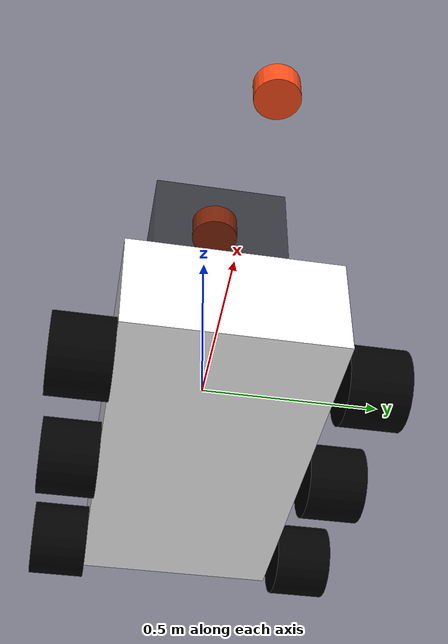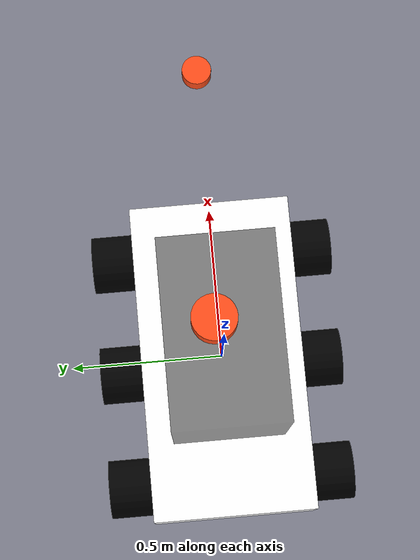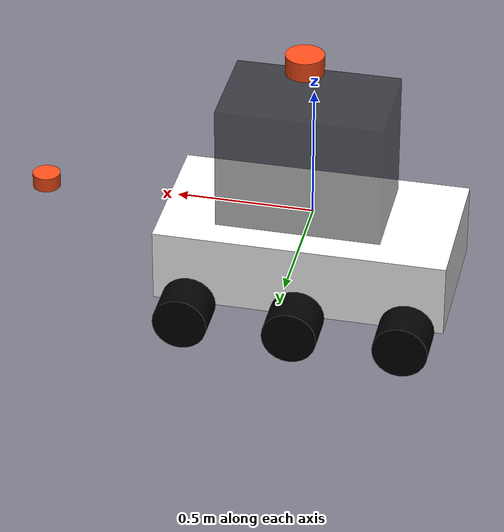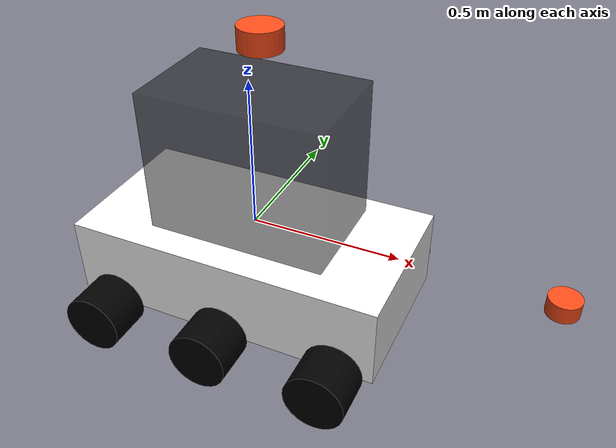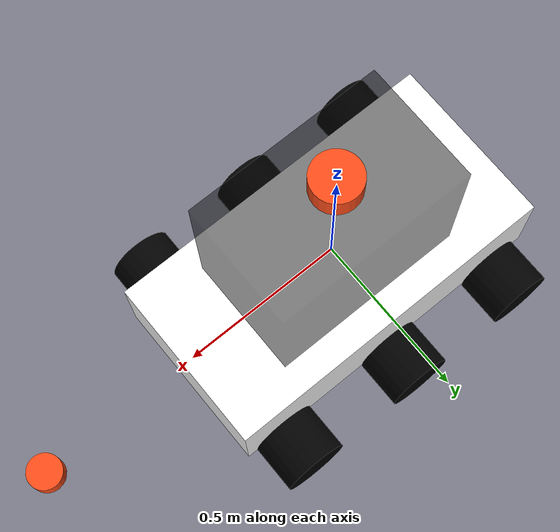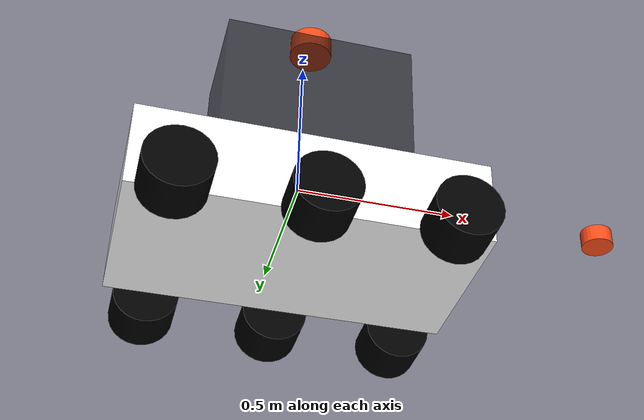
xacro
<?xml version="1.0"?>
<robot xmlns:xacro="http://www.ros.org/wiki/xacro"  name="jo">

    <xacro:arg name="use_ros2_control" default="true"/>
    <xacro:arg name="use_sim_time" default="false"/>

    <xacro:include filename="robot_core.xacro" />
    <xacro:include filename="ros2_control.xacro" />

    <xacro:include filename="velodyne.xacro" />
    <xacro:include filename="D455.xacro" />

</robot>

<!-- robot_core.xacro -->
<robot xmlns:xacro="http://www.ros.org/wiki/xacro" >

    <xacro:include filename="inertial_macros.xacro"/>

    <xacro:property name="chassis_length" value="1.064"/>
    <xacro:property name="chassis_width" value="0.545"/>
    <xacro:property name="chassis_height" value="0.273"/>
    <xacro:property name="chassis_mass" value="140.0"/>
    <xacro:property name="wheel_radius" value="0.1"/>
    <xacro:property name="wheel_thickness" value="0.15"/>
    <xacro:property name="wheel_mass" value="20.0"/>
    <xacro:property name="wheel_offset_x" value="0.532"/>
    <xacro:property name="wheel_offset_y" value="${chassis_width/2 + wheel_thickness/2}"/>
    <xacro:property name="wheel_offset_z" value="${chassis_height}"/>
    <xacro:property name="wheel_spacing" value="0.4"/>
    <xacro:property name="caster_wheel_radius" value="${wheel_radius}"/>
    <xacro:property name="caster_wheel_mass" value="0.01"/>
    <xacro:property name="caster_wheel_offset_x" value="${chassis_length/2 - caster_wheel_radius}"/>
    <xacro:property name="caster_wheel_offset_z" value="${chassis_height}"/>

    <material name="white">
        <color rgba="1 1 1 1" />
    </material>

    <material name="orange">
        <color rgba="1 0.3 0.1 1"/>
    </material>

    <material name="blue">
        <color rgba="0.2 0.2 1 1"/>
    </material>

    <material name="black">
        <color rgba="0 0 0 1"/>
    </material>

    <material name="black_t">
        <color rgba="0 0 0 0.5"/>
    </material>

    <material name="red">
        <color rgba="1 0 0 1"/>
    </material>

    <!-- BASE LINK -->

    <link name="base_link">

    </link>

    <!-- BASE_FOOTPRINT LINK -->

    <joint name="base_footprint_joint" type="fixed">
        <parent link="base_link"/>
        <child link="base_footprint"/>
        <origin xyz="0 0 ${-chassis_height - wheel_radius}" rpy="0 0 0"/>
    </joint>

    <link name="base_footprint">
    </link>

    <!-- CHASSIS LINK -->

    <joint name="chassis_joint" type="fixed">
        <parent link="base_link"/>
        <child link="chassis"/>
        <origin xyz="${-wheel_offset_x} 0 ${-chassis_height/2}"/>
    </joint>

    <link name="chassis">
        <visual>
            <origin xyz="${chassis_length/2} 0 0"/>
            <geometry>
                <box size="${chassis_length} ${chassis_width} ${chassis_height}"/>
            </geometry>
            <material name="white"/>
        </visual>
        <collision>
            <origin xyz="${chassis_length/2} 0 0"/>
            <geometry>
                <box size="${chassis_length} ${chassis_width} ${chassis_height}"/>
            </geometry>
        </collision>
        <xacro:inertial_box mass="${chassis_mass}" x="${chassis_length}" y="${chassis_width}" z="${chassis_height}">
            <origin xyz="${chassis_length/2} 0 0" rpy="0 0 0"/>
        </xacro:inertial_box>
    </link>

    <gazebo reference="chassis">
        <material>Gazebo/White</material>
    </gazebo>

    <!-- LEFT WHEEL LINK -->

    <joint name="left_wheel_center_joint" type="continuous">
        <parent link="base_link"/>
        <child link="left_wheel_center"/>
        <origin xyz="0 ${wheel_offset_y} ${-wheel_offset_z}" rpy="-${pi/2} 0 0" />
        <axis xyz="0 0 1"/>
    </joint>

    <link name="left_wheel_center">
        <visual>
            <geometry>
                <cylinder radius="${wheel_radius}" length="${wheel_thickness}"/>
            </geometry>
            <material name="black"/>
        </visual>
        <collision>
            <geometry>
                <sphere radius="${wheel_radius}"/>
            </geometry>
        </collision>
        <xacro:inertial_cylinder mass="${wheel_mass}" length="${wheel_thickness}" radius="${wheel_radius}">
            <origin xyz="0 0 0" rpy="0 0 0"/>
        </xacro:inertial_cylinder>
    </link>

    <gazebo reference="left_wheel_center">
        <material>Gazebo/Black</material>
    </gazebo>

    <joint name="left_wheel_front_joint" type="continuous">
        <parent link="base_link"/>
        <child link="left_wheel_front"/>
        <origin xyz="${wheel_spacing} ${wheel_offset_y} ${-wheel_offset_z}" rpy="-${pi/2} 0 0" />
        <axis xyz="0 0 1"/>
    </joint>

    <link name="left_wheel_front">
        <visual>
            <geometry>
                <cylinder radius="${wheel_radius}" length="${wheel_thickness}"/>
            </geometry>
            <material name="black"/>
        </visual>
        <collision>
            <geometry>
                <sphere radius="${wheel_radius}"/>
            </geometry>
        </collision>
        <xacro:inertial_cylinder mass="${wheel_mass}" length="${wheel_thickness}" radius="${wheel_radius}">
            <origin xyz="0 0 0" rpy="0 0 0"/>
        </xacro:inertial_cylinder>
    </link>

    <gazebo reference="left_wheel_front">
        <material>Gazebo/Black</material>
    </gazebo>

    <joint name="left_wheel_back_joint" type="continuous">
        <parent link="base_link"/>
        <child link="left_wheel_back"/>
        <origin xyz="${-wheel_spacing} ${wheel_offset_y} ${-wheel_offset_z}" rpy="-${pi/2} 0 0" />
        <axis xyz="0 0 1"/>
    </joint>

    <link name="left_wheel_back">
        <visual>
            <geometry>
                <cylinder radius="${wheel_radius}" length="${wheel_thickness}"/>
            </geometry>
            <material name="black"/>
        </visual>
        <collision>
            <geometry>
                <sphere radius="${wheel_radius}"/>
            </geometry>
        </collision>
        <xacro:inertial_cylinder mass="${wheel_mass}" length="${wheel_thickness}" radius="${wheel_radius}">
            <origin xyz="0 0 0" rpy="0 0 0"/>
        </xacro:inertial_cylinder>
    </link>

    <gazebo reference="left_wheel_back">
        <material>Gazebo/Black</material>
    </gazebo>

    <!-- RIGHT WHEEL LINK -->

    <joint name="right_wheel_center_joint" type="continuous">
        <parent link="base_link"/>
        <child link="right_wheel_center"/>
        <origin xyz="0 ${-wheel_offset_y} ${-wheel_offset_z}" rpy="${pi/2} 0 0" />
        <axis xyz="0 0 -1"/>
    </joint>

    <link name="right_wheel_center">
        <visual>
            <geometry>
                <cylinder radius="${wheel_radius}" length="${wheel_thickness}"/>
            </geometry>
            <material name="black"/>
        </visual>
        <collision>
            <geometry>
                <sphere radius="${wheel_radius}"/>
            </geometry>
        </collision>
        <xacro:inertial_cylinder mass="${wheel_mass}" length="${wheel_thickness}" radius="${wheel_radius}">
            <origin xyz="0 0 0" rpy="0 0 0"/>
        </xacro:inertial_cylinder>
    </link>

    <gazebo reference="right_wheel_center">
        <material>Gazebo/Black</material>
    </gazebo>

    <joint name="right_wheel_front_joint" type="continuous">
        <parent link="base_link"/>
        <child link="right_wheel_front"/>
        <origin xyz="${wheel_spacing} ${-wheel_offset_y} ${-wheel_offset_z}" rpy="${pi/2} 0 0" />
        <axis xyz="0 0 -1"/>
    </joint>

    <link name="right_wheel_front">
        <visual>
            <geometry>
                <cylinder radius="${wheel_radius}" length="${wheel_thickness}"/>
            </geometry>
            <material name="black"/>
        </visual>
        <collision>
            <geometry>
                <sphere radius="${wheel_radius}"/>
            </geometry>
        </collision>
        <xacro:inertial_cylinder mass="${wheel_mass}" length="${wheel_thickness}" radius="${wheel_radius}">
            <origin xyz="0 0 0" rpy="0 0 0"/>
        </xacro:inertial_cylinder>
    </link>

    <gazebo reference="right_wheel_front">
        <material>Gazebo/Black</material>
    </gazebo>

    <joint name="right_wheel_back_joint" type="continuous">
        <parent link="base_link"/>
        <child link="right_wheel_back"/>
        <origin xyz="${-wheel_spacing} ${-wheel_offset_y} ${-wheel_offset_z}" rpy="${pi/2} 0 0" />
        <axis xyz="0 0 -1"/>
    </joint>

    <link name="right_wheel_back">
        <visual>
            <geometry>
                <cylinder radius="${wheel_radius}" length="${wheel_thickness}"/>
            </geometry>
            <material name="black"/>
        </visual>
        <collision>
            <geometry>
                <sphere radius="${wheel_radius}"/>
            </geometry>
        </collision>
        <xacro:inertial_cylinder mass="${wheel_mass}" length="${wheel_thickness}" radius="${wheel_radius}">
            <origin xyz="0 0 0" rpy="0 0 0"/>
        </xacro:inertial_cylinder>
    </link>

    <gazebo reference="right_wheel_back">
        <material>Gazebo/Black</material>
    </gazebo>

    <link name="rack">
        <visual>
            <origin xyz=" 0 0 0"/>
            <geometry>
                <box size="0.6 0.37 0.47"/>
            </geometry>
            <material name="black_t"/>
        </visual>
        <collision>
            <origin xyz="0 0 0"/>
            <geometry>
                <box size="${chassis_length*0.6} ${chassis_width*0.8} 0.5"/>
            </geometry>
        </collision>
        <xacro:inertial_box mass="0.1" x="${chassis_length*0.6}" y="${chassis_width*0.8}" z="0.5">
            <origin xyz="0 0 0" rpy="0 0 0"/>
        </xacro:inertial_box>
    </link>

    <joint name="base2rack" type="fixed">
        <parent link="base_link"/>
        <child link="rack"/>
        <origin xyz="0.02 0 0.25"/>
    </joint>

</robot>

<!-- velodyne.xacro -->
<robot xmlns:xacro="http://ros.org/wiki/xacro">

    <xacro:property name="PI" value="3.141592" />

    <xacro:property name="b2l_x" value="0.03" />
    <xacro:property name="b2l_y" value="0.0286" />
    <xacro:property name="b2l_z" value="0.630" />
    <xacro:property name="b2l_R" value="0.0" />
    <xacro:property name="b2l_P" value="0.0" />
    <xacro:property name="b2l_Y" value="0.0" />
    <xacro:property name="lidar_mass" value="0.125" />
    <xacro:property name="lidar_len_rad" value="0.07" />
    <xacro:property name="lidar_len_h" value="0.072" />
    <xacro:include filename="$(find jo_description)/urdf/inertial_macros.xacro" />

    <xacro:macro name="lidar_sensor" params="namespace">
        <joint name="base2lidar" type="fixed">
            <parent link="base_link"/>
            <child link="velodyne"/>
            <origin xyz="${b2l_x} ${b2l_y} ${b2l_z}" rpy="${b2l_R} ${b2l_P} ${b2l_Y}"/>
        </joint>
        <link name="velodyne">
            <collision>
                <origin xyz="0 0 0" rpy="0 0 0"/>
                <geometry>
                    <cylinder radius="${lidar_len_rad}" length="${lidar_len_h}"/>
                </geometry>
            </collision>

            <visual>
                <origin xyz="0 0 0" rpy="0 0 0"/>
                <geometry>
                    <cylinder radius="${lidar_len_rad}" length="${lidar_len_h}"/>
                </geometry>
                <material name="orange"/>
            </visual>

            <xacro:inertial_cylinder mass="${lidar_mass}" radius="${lidar_len_rad}" length="${lidar_len_h}">
                    <origin xyz="0 0 0" rpy="0 0 0"/>
            </xacro:inertial_cylinder>

        </link>
        <gazebo reference="velodyne">
            <sensor name="RGLsensor" type="custom">
                <plugin filename="RGLServerPluginInstance" name="rgl::RGLServerPluginInstance">
                    <range>
                    <min>0.1</min>
                    <max>100</max>
                    </range>
                    <update_rate>10</update_rate>
                    <update_on_paused_sim>false</update_on_paused_sim>
                    <topic>${namespace}/velodyne_points</topic>
                    <frame>${namespace}/velodyne</frame>
                    <pattern_preset>Puck</pattern_preset>
                </plugin>
            </sensor>
        </gazebo>

    </xacro:macro>

    <xacro:lidar_sensor namespace=""/>

</robot>

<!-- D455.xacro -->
<robot xmlns:xacro="http://ros.org/wiki/xacro">

    <xacro:property name="PI" value="3.141592" />

    <xacro:property name="b2c_x" value="1.0" />
    <xacro:property name="b2c_y" value="0.0" />
    <xacro:property name="b2c_z" value="0.0" />
    <xacro:property name="b2c_R" value="0.0" />
    <xacro:property name="b2c_P" value="0.0" />
    <xacro:property name="b2c_Y" value="0.0" />
    <xacro:property name="camera_mass" value="0.125" />
    <xacro:property name="camera_len_rad" value="0.0508" />
    <xacro:property name="camera_len_h" value="0.055" />
    <xacro:include filename="$(find jo_description)/urdf/inertial_macros.xacro" />

    <xacro:macro name="d455" params="namespace">
        <joint name="base2camera" type="fixed">
            <parent link="base_link"/>
            <child link="camera_link"/>
            <origin xyz="${b2c_x} ${b2c_y} ${b2c_z}" rpy="${b2c_R} ${b2c_P} ${b2c_Y}"/>
        </joint>
        <link name="camera_link">
            <collision>
                <origin xyz="0 0 0" rpy="0 0 0"/>
                <geometry>
                    <cylinder radius="${camera_len_rad}" length="${camera_len_h}"/>
                </geometry>
            </collision>

            <visual>
                <origin xyz="0 0 0" rpy="0 0 0"/>
                <geometry>
                    <cylinder radius="${camera_len_rad}" length="${camera_len_h}"/>
                </geometry>
                <material name="orange"/>
            </visual>

            <xacro:inertial_cylinder mass="${camera_mass}" radius="${camera_len_rad}" length="${camera_len_h}">
                    <origin xyz="0 0 0" rpy="0 0 0"/>
            </xacro:inertial_cylinder>

        </link>
        <gazebo reference="camera_link">
            <sensor name="d455" type="rgbd_camera">
                <gz_frame_id>camera_link</gz_frame_id>
                <always_on>true</always_on>
                <update_rate>30</update_rate>
                <visualize>true</visualize>

                <!-- RGB camera -->
                <camera name="color">
                <horizontal_fov>1.50</horizontal_fov>  <!-- ≈86 deg -->
                <image>
                    <width>640</width>
                    <height>480</height>
                    <format>R8G8B8</format>
                </image>
                <clip>
                    <near>0.1</near>
                    <far>20</far>
                </clip>
                </camera>

                <!-- Depth -->
                <depth_camera>
                <clip>
                    <near>0.35</near>
                    <far>8.0</far>
                </clip>

                </depth_camera>

                <topic>camera</topic>
            </sensor>
            </gazebo>

    </xacro:macro>

    <xacro:d455 namespace=""/>

</robot>
